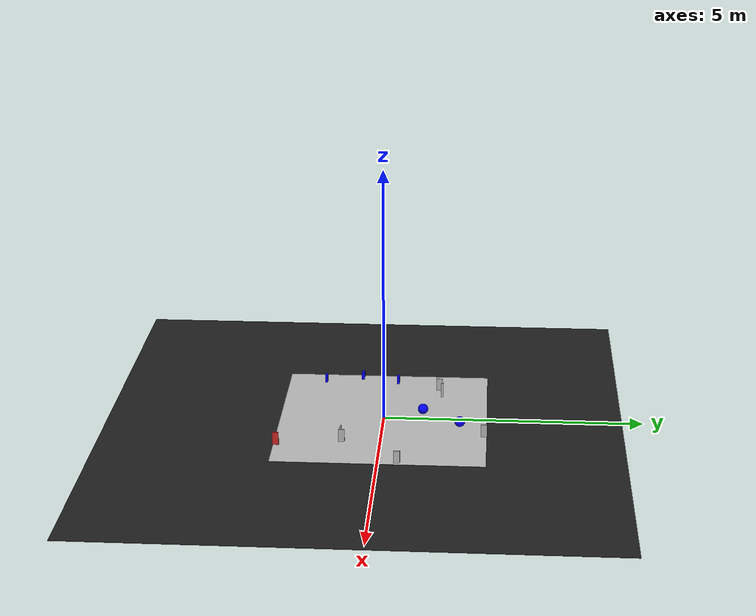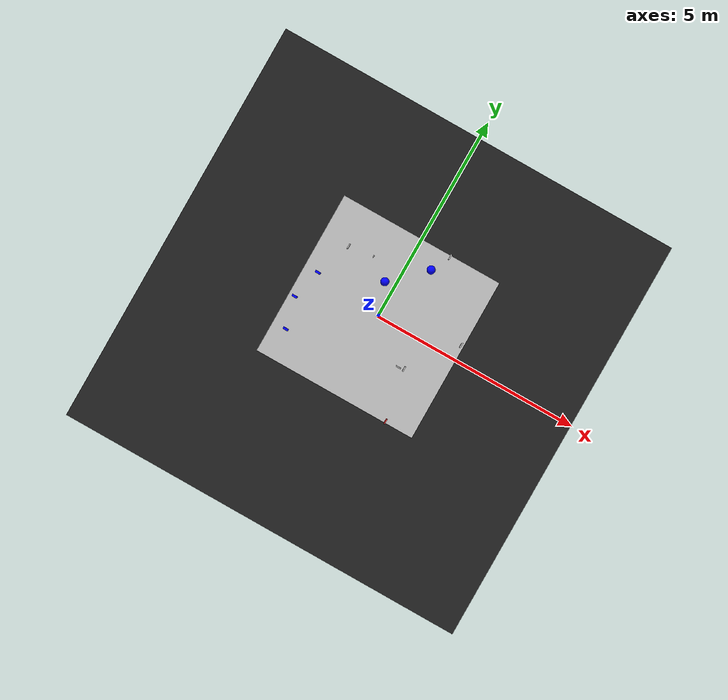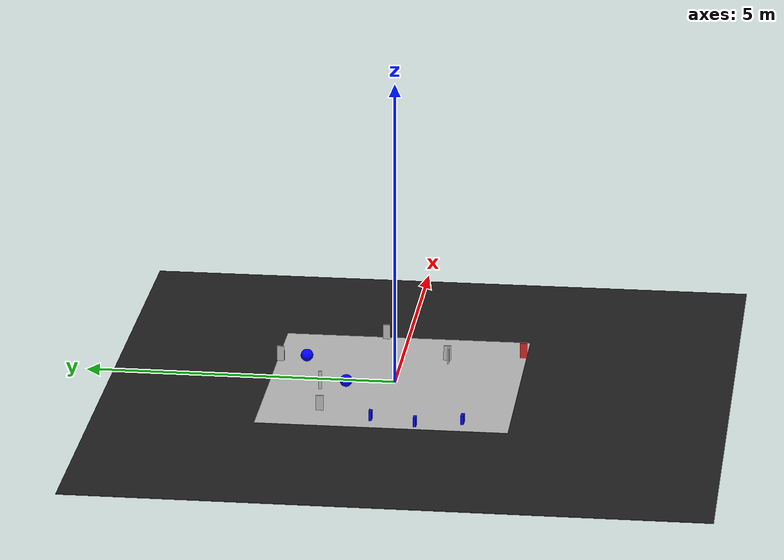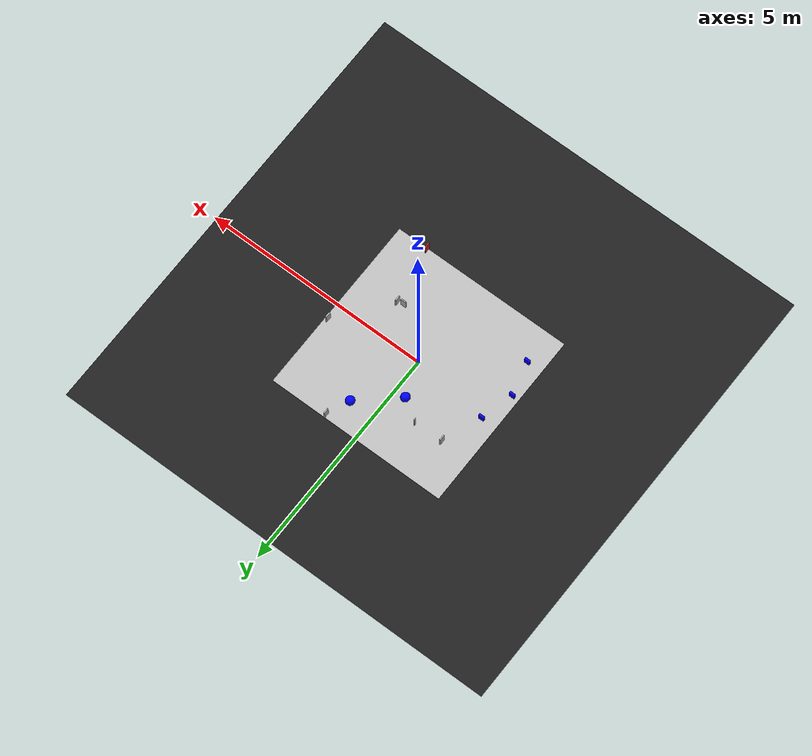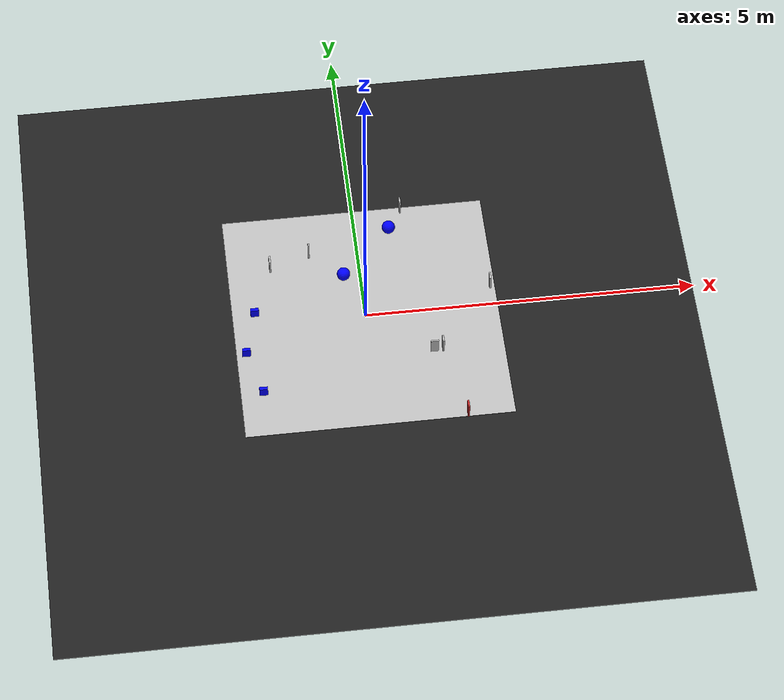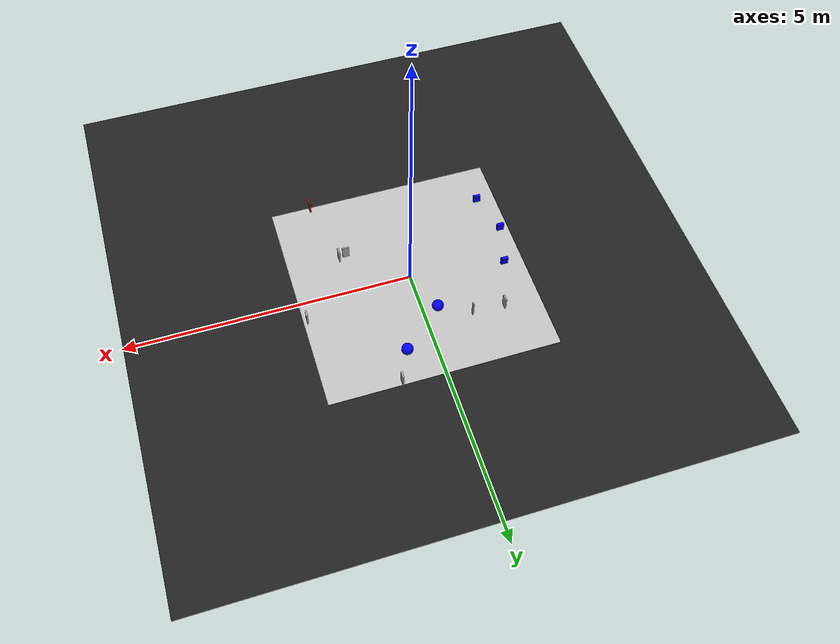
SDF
<sdf version="1.7">
 <world name="default">
  <scene>
   <ambient>0.8 0.8 0.8 1</ambient>
   <shadows>0</shadows>
   <grid>0</grid>
   <background>0.7 0.7 0.7 1</background>
  </scene>
  <model name="course">
   <static>1</static>
   <link name="course_link">
    <collision name="course_collision">
     <geometry><plane><normal>0 0 1</normal><size>4 4</size></plane></geometry>
     <surface><friction><ode><mu>100</mu><mu2>50</mu2></ode></friction></surface>
    </collision>
    <visual name="course_visual">
     <cast_shadows>0</cast_shadows>
     <geometry><plane><normal>0 0 1</normal><size>4 4</size></plane></geometry>
     <material>
      <script>
       <uri>model://turtlebot3_autorace_2020/course/materials/scripts</uri>
       <uri>model://turtlebot3_autorace_2020/course/materials/textures</uri>
       <name>course</name>
      </script>
     </material>
    </visual>
   </link>
   <pose>0 0 0 0 0 -3.14</pose>
  </model>
  <model name="traffic_bar">
   <static>0</static>
   <link name="traffic_bar">
    <collision name="collision"><geometry><box><size>0.3 0.02 0.05</size></box></geometry></collision>
    <visual name="visual">
     <geometry><box><size>0.3 0.02 0.05</size></box></geometry>
     <material>
      <script>
       <uri>model://turtlebot3_autorace_2020/traffic_bar/materials/scripts</uri>
       <uri>model://turtlebot3_autorace_2020/traffic_bar/materials/textures</uri>
       <name>traffic_bar</name>
      </script>
     </material>
    </visual>
    <inertial>
     <inertia><ixx>1</ixx><ixy>0</ixy><ixz>0</ixz><iyy>1</iyy><iyz>0</iyz><izz>1</izz></inertia>
     <mass>1</mass>
    </inertial>
   </link>
   <plugin name="traffic_bar_plugin" filename="libtraffic_bar_plugin.so"/>
   <pose>-0.75 1.11 0.275 0 -1.57 -1.57</pose>
  </model>
  <model name="traffic_light">
   <link name="traffic_light">
    <collision name="collision"><geometry><box><size>0.12 0.025 0.25</size></box></geometry></collision>
    <visual name="visual">
     <geometry><box><size>0.12 0.025 0.25</size></box></geometry>
     <material>
      <script>
       <uri>model://turtlebot3_autorace_2020/traffic_light/materials/scripts</uri>
       <uri>model://turtlebot3_autorace_2020/traffic_light/materials/textures</uri>
       <name>traffic_light_red</name>
      </script>
     </material>
    </visual>
   </link>
   <plugin name="traffic_light_plugin" filename="libtraffic_light_plugin.so"/>
   <static>1</static>
   <pose>1.3 -1.95 0.13 0 0 -1.57</pose>
  </model>
  <model name="traffic_parking">
   <static>1</static>
   <link name="box">
    <collision name="collision"><geometry><box><size>0.12 0.025 0.25</size></box></geometry></collision>
    <visual name="visual">
     <geometry><box><size>0.12 0.025 0.25</size></box></geometry>
     <material>
      <script>
       <uri>model://turtlebot3_autorace_2020/traffic_parking/materials/scripts</uri>
       <uri>model://turtlebot3_autorace_2020/traffic_parking/materials/textures</uri>
       <name>traffic_parking</name>
      </script>
     </material>
    </visual>
   </link>
   <pose>0.74 1.95 0.13 0 0 -1.57</pose>
  </model>
  <model name="traffic_stop">
   <static>1</static>
   <link name="box">
    <collision name="collision"><geometry><box><size>0.12 0.025 0.25</size></box></geometry></collision>
    <visual name="visual">
     <geometry><box><size>0.12 0.025 0.25</size></box></geometry>
     <material>
      <script>
       <uri>model://turtlebot3_autorace_2020/traffic_stop/materials/scripts</uri>
       <uri>model://turtlebot3_autorace_2020/traffic_stop/materials/textures</uri>
       <name>traffic_stop</name>
      </script>
     </material>
    </visual>
   </link>
   <pose>-1.35 1.04 0.125 0 0 -1.57</pose>
  </model>
  <model name="traffic_noentry">
   <static>1</static>
   <link name="box">
    <collision name="collision"><geometry><box><size>0.12 0.025 0.25</size></box></geometry></collision>
    <visual name="visual">
     <geometry><box><size>0.12 0.025 0.25</size></box></geometry>
     <material>
      <script>
       <uri>model://turtlebot3_autorace_2020/traffic_noentry/materials/scripts</uri>
       <uri>model://turtlebot3_autorace_2020/traffic_noentry/materials/textures</uri>
       <name>traffic_noentry</name>
      </script>
     </material>
    </visual>
   </link>
   <pose>0.95 -0.758 0.125 0 -0 0</pose>
  </model>
  <model name="traffic_right">
   <static>1</static>
   <link name="box">
    <collision name="collision"><geometry><box><size>0.12 0.025 0.25</size></box></geometry></collision>
    <visual name="visual">
     <geometry><box><size>0.12 0.025 0.25</size></box></geometry>
     <material>
      <script>
       <uri>model://turtlebot3_autorace_2020/traffic_right/materials/scripts</uri>
       <uri>model://turtlebot3_autorace_2020/traffic_right/materials/textures</uri>
       <name>traffic_right</name>
      </script>
     </material>
    </visual>
   </link>
   <pose>1.08 -0.728 0.125 0 0 -1.57</pose>
  </model>
  <light name="sun" type="directional">
   <pose>0 0 10 0 -0 0</pose>
   <diffuse>0.8 0.8 0.8 1</diffuse>
   <specular>0.1 0.1 0.1 1</specular>
   <attenuation>
    <range>1000</range>
    <constant>0.9</constant>
    <linear>0.01</linear>
    <quadratic>0.001</quadratic>
   </attenuation>
   <direction>-0.5 0.5 -1</direction>
   <spot><inner_angle>0</inner_angle><outer_angle>0</outer_angle><falloff>0</falloff></spot>
  </light>
  <model name="ground2">
   <pose>-0.012503 -0.386554 -0.1 0 -0 0</pose>
   <static>1</static>
   <link name="ground">
    <collision name="ground_coll"><geometry><box><size>8 8 0.01</size></box></geometry></collision>
    <visual name="ground_vis">
     <geometry><box><size>10 10 0.01</size></box></geometry>
     <material>
      <script><uri>file://media/materials/scripts/gazebo.material</uri><name>Gazebo/FlatBlack</name></script>
     </material>
    </visual>
   </link>
  </model>
  <gravity>0 0 -9.8</gravity>
  <magnetic_field>6e-06 2.3e-05 -4.2e-05</magnetic_field>
  <atmosphere type="adiabatic"/>
  <physics name="default_physics" default="0" type="ode">
   <max_step_size>0.001</max_step_size>
   <real_time_factor>1</real_time_factor>
   <real_time_update_rate>1000</real_time_update_rate>
  </physics>
  <spherical_coordinates>
   <surface_model>EARTH_WGS84</surface_model>
   <latitude_deg>0</latitude_deg>
   <longitude_deg>0</longitude_deg>
   <elevation>0</elevation>
   <heading_deg>0</heading_deg>
  </spherical_coordinates>
  <light name="user_point_light_1" type="point">
   <pose>-1.64815 0.604519 1 0 -0 0</pose>
   <diffuse>0.5 0.5 0.5 1</diffuse>
   <specular>0.1 0.1 0.1 1</specular>
   <attenuation>
    <range>20</range>
    <constant>0.5</constant>
    <linear>0.01</linear>
    <quadratic>0.001</quadratic>
   </attenuation>
   <cast_shadows>0</cast_shadows>
   <direction>0 0 -1</direction>
   <spot><inner_angle>0</inner_angle><outer_angle>0</outer_angle><falloff>0</falloff></spot>
  </light>
  <light name="user_point_light_2" type="point">
   <pose>1.63854 1.69565 1 0 -0 0</pose>
   <diffuse>0.5 0.5 0.5 1</diffuse>
   <specular>0.1 0.1 0.1 1</specular>
   <attenuation>
    <range>20</range>
    <constant>0.5</constant>
    <linear>0.01</linear>
    <quadratic>0.001</quadratic>
   </attenuation>
   <cast_shadows>0</cast_shadows>
   <direction>0 0 -1</direction>
   <spot><inner_angle>0</inner_angle><outer_angle>0</outer_angle><falloff>0</falloff></spot>
  </light>
  <light name="user_point_light_3" type="point">
   <pose>0.42 -3.31 1 0 -0 0</pose>
   <diffuse>0.5 0.5 0.5 1</diffuse>
   <specular>0.1 0.1 0.1 1</specular>
   <attenuation>
    <range>20</range>
    <constant>0.5</constant>
    <linear>0.01</linear>
    <quadratic>0.001</quadratic>
   </attenuation>
   <cast_shadows>0</cast_shadows>
   <direction>0 0 -1</direction>
   <spot><inner_angle>0</inner_angle><outer_angle>0</outer_angle><falloff>0</falloff></spot>
  </light>
  <model name="barrier_1">
   <link name="link">
    <inertial>
     <mass>1</mass>
     <inertia>
      <ixx>0.166667</ixx>
      <ixy>0</ixy>
      <ixz>0</ixz>
      <iyy>0.166667</iyy>
      <iyz>0</iyz>
      <izz>0.166667</izz>
     </inertia>
    </inertial>
    <gravity>0</gravity>
    <visual name="visual">
     <geometry><sphere><radius>0.1</radius></sphere></geometry>
     <material>
      <ambient>0 0 0.3 1</ambient>
      <diffuse>0 0 1 1</diffuse>
      <specular>0.1 0.1 0.1 1</specular>
      <emissive>0 0 0 1</emissive>
      <ambient>0.3 0.3 0.3 1</ambient>
      <diffuse>0.7 0.7 0.7 1</diffuse>
      <specular>0.01 0.01 0.01 1</specular>
      <emissive>0 0 0 1</emissive>
     </material>
    </visual>
    <collision name="collision">
     <geometry><box><size>0.25 0.1 0.3</size></box></geometry>
     <surface>
      <friction>
       <ode><mu>1</mu><mu2>1</mu2><fdir1>0 0 0</fdir1><slip1>0</slip1><slip2>0</slip2></ode>
       <torsional>
        <coefficient>1</coefficient>
        <patch_radius>0</patch_radius>
        <surface_radius>0</surface_radius>
        <use_patch_radius>1</use_patch_radius>
        <ode><slip>0</slip></ode>
       </torsional>
      </friction>
      <bounce><restitution_coefficient>0</restitution_coefficient><threshold>1e+06</threshold></bounce>
      <contact>
       <collide_without_contact>0</collide_without_contact>
       <collide_without_contact_bitmask>1</collide_without_contact_bitmask>
       <collide_bitmask>1</collide_bitmask>
       <ode>
        <soft_cfm>0</soft_cfm>
        <soft_erp>0.2</soft_erp>
        <kp>1e+13</kp>
        <kd>1</kd>
        <max_vel>0.01</max_vel>
        <min_depth>0</min_depth>
       </ode>
       <bullet>
        <split_impulse>1</split_impulse>
        <split_impulse_penetration_threshold>-0.01</split_impulse_penetration_threshold>
        <soft_cfm>0</soft_cfm>
        <soft_erp>0.2</soft_erp>
        <kp>1e+13</kp>
        <kd>1</kd>
       </bullet>
      </contact>
     </surface>
    </collision>
   </link>
   <static>0</static>
   <plugin name="barrier1_plugin" filename="libbarrier1_plugin.so"/>
   <pose>-0.254663 0.756448 0.090515 -1.56045 0.247724 0.005615</pose>
  </model>
  <model name="barrier_2">
   <link name="link">
    <inertial>
     <mass>1</mass>
     <inertia>
      <ixx>0.166667</ixx>
      <ixy>0</ixy>
      <ixz>0</ixz>
      <iyy>0.166667</iyy>
      <iyz>0</iyz>
      <izz>0.166667</izz>
     </inertia>
    </inertial>
    <visual name="visual">
     <geometry><box><size>0.125 0.05 0.15</size></box></geometry>
     <material>
      <ambient>0 0 0.3 1</ambient>
      <diffuse>0 0 1 1</diffuse>
      <specular>0.1 0.1 0.1 1</specular>
      <emissive>0 0 0 1</emissive>
      <ambient>0.3 0.3 0.3 1</ambient>
      <diffuse>0.7 0.7 0.7 1</diffuse>
      <specular>0.01 0.01 0.01 1</specular>
      <emissive>0 0 0 1</emissive>
     </material>
    </visual>
    <collision name="collision">
     <geometry><box><size>0.125 0.05 0.15</size></box></geometry>
     <surface>
      <friction>
       <ode><mu>1</mu><mu2>1</mu2><fdir1>0 0 0</fdir1><slip1>0</slip1><slip2>0</slip2></ode>
       <torsional>
        <coefficient>1</coefficient>
        <patch_radius>0</patch_radius>
        <surface_radius>0</surface_radius>
        <use_patch_radius>1</use_patch_radius>
        <ode><slip>0</slip></ode>
       </torsional>
      </friction>
      <bounce><restitution_coefficient>0</restitution_coefficient><threshold>1e+06</threshold></bounce>
      <contact>
       <collide_without_contact>0</collide_without_contact>
       <collide_without_contact_bitmask>1</collide_without_contact_bitmask>
       <collide_bitmask>1</collide_bitmask>
       <ode>
        <soft_cfm>0</soft_cfm>
        <soft_erp>0.2</soft_erp>
        <kp>1e+13</kp>
        <kd>1</kd>
        <max_vel>0.01</max_vel>
        <min_depth>0</min_depth>
       </ode>
       <bullet>
        <split_impulse>1</split_impulse>
        <split_impulse_penetration_threshold>-0.01</split_impulse_penetration_threshold>
        <soft_cfm>0</soft_cfm>
        <soft_erp>0.2</soft_erp>
        <kp>1e+13</kp>
        <kd>1</kd>
       </bullet>
      </contact>
     </surface>
    </collision>
   </link>
   <static>0</static>
   <pose>-1.84814 -0.525911 0.075 -2e-06 6e-06 3.13639</pose>
  </model>
  <model name="barrier_3">
   <link name="link">
    <inertial>
     <mass>1</mass>
     <inertia>
      <ixx>0.166667</ixx>
      <ixy>0</ixy>
      <ixz>0</ixz>
      <iyy>0.166667</iyy>
      <iyz>0</iyz>
      <izz>0.166667</izz>
     </inertia>
    </inertial>
    <visual name="visual">
     <geometry><box><size>0.125 0.05 0.15</size></box></geometry>
     <material>
      <ambient>0 0 0.3 1</ambient>
      <diffuse>0 0 1 1</diffuse>
      <specular>0.1 0.1 0.1 1</specular>
      <emissive>0 0 0 1</emissive>
      <ambient>0.3 0.3 0.3 1</ambient>
      <diffuse>0.7 0.7 0.7 1</diffuse>
      <specular>0.01 0.01 0.01 1</specular>
      <emissive>0 0 0 1</emissive>
     </material>
    </visual>
    <collision name="collision">
     <geometry><box><size>0.125 0.05 0.15</size></box></geometry>
     <surface>
      <friction>
       <ode><mu>1</mu><mu2>1</mu2><fdir1>0 0 0</fdir1><slip1>0</slip1><slip2>0</slip2></ode>
       <torsional>
        <coefficient>1</coefficient>
        <patch_radius>0</patch_radius>
        <surface_radius>0</surface_radius>
        <use_patch_radius>1</use_patch_radius>
        <ode><slip>0</slip></ode>
       </torsional>
      </friction>
      <bounce><restitution_coefficient>0</restitution_coefficient><threshold>1e+06</threshold></bounce>
      <contact>
       <collide_without_contact>0</collide_without_contact>
       <collide_without_contact_bitmask>1</collide_without_contact_bitmask>
       <collide_bitmask>1</collide_bitmask>
       <ode>
        <soft_cfm>0</soft_cfm>
        <soft_erp>0.2</soft_erp>
        <kp>1e+13</kp>
        <kd>1</kd>
        <max_vel>0.01</max_vel>
        <min_depth>0</min_depth>
       </ode>
       <bullet>
        <split_impulse>1</split_impulse>
        <split_impulse_penetration_threshold>-0.01</split_impulse_penetration_threshold>
        <soft_cfm>0</soft_cfm>
        <soft_erp>0.2</soft_erp>
        <kp>1e+13</kp>
        <kd>1</kd>
       </bullet>
      </contact>
     </surface>
    </collision>
   </link>
   <static>0</static>
   <pose>-1.66013 -1.26015 0.075 2e-06 -0 -0.014152</pose>
  </model>
  <audio><device>default</device></audio>
  <model name="barrier_1_clone">
   <link name="link">
    <inertial>
     <mass>1</mass>
     <inertia>
      <ixx>0.166667</ixx>
      <ixy>0</ixy>
      <ixz>0</ixz>
      <iyy>0.166667</iyy>
      <iyz>0</iyz>
      <izz>0.166667</izz>
     </inertia>
    </inertial>
    <gravity>0</gravity>
    <visual name="visual">
     <geometry><sphere><radius>0.1</radius></sphere></geometry>
     <material>
      <ambient>0 0 0.3 1</ambient>
      <diffuse>0 0 1 1</diffuse>
      <specular>0.1 0.1 0.1 1</specular>
      <emissive>0 0 0 1</emissive>
      <ambient>0.3 0.3 0.3 1</ambient>
      <diffuse>0.7 0.7 0.7 1</diffuse>
      <specular>0.01 0.01 0.01 1</specular>
      <emissive>0 0 0 1</emissive>
     </material>
    </visual>
    <collision name="collision">
     <geometry><box><size>0.25 0.1 0.3</size></box></geometry>
     <surface>
      <friction>
       <ode><mu>1</mu><mu2>1</mu2><fdir1>0 0 0</fdir1><slip1>0</slip1><slip2>0</slip2></ode>
       <torsional>
        <coefficient>1</coefficient>
        <patch_radius>0</patch_radius>
        <surface_radius>0</surface_radius>
        <use_patch_radius>1</use_patch_radius>
        <ode><slip>0</slip></ode>
       </torsional>
      </friction>
      <bounce><restitution_coefficient>0</restitution_coefficient><threshold>1e+06</threshold></bounce>
      <contact>
       <collide_without_contact>0</collide_without_contact>
       <collide_without_contact_bitmask>1</collide_without_contact_bitmask>
       <collide_bitmask>1</collide_bitmask>
       <ode>
        <soft_cfm>0</soft_cfm>
        <soft_erp>0.2</soft_erp>
        <kp>1e+13</kp>
        <kd>1</kd>
        <max_vel>0.01</max_vel>
        <min_depth>0</min_depth>
       </ode>
       <bullet>
        <split_impulse>1</split_impulse>
        <split_impulse_penetration_threshold>-0.01</split_impulse_penetration_threshold>
        <soft_cfm>0</soft_cfm>
        <soft_erp>0.2</soft_erp>
        <kp>1e+13</kp>
        <kd>1</kd>
       </bullet>
      </contact>
     </surface>
    </collision>
   </link>
   <static>0</static>
   <plugin name="barrier1_clone_plugin" filename="libbarrier1_clone_plugin.so"/>
   <pose>0.513196 1.48808 0.201292 0.366861 1.41075 2.10976</pose>
  </model>
  <model name="barrier_3_clone">
   <link name="link">
    <inertial>
     <mass>1</mass>
     <inertia>
      <ixx>0.166667</ixx>
      <ixy>0</ixy>
      <ixz>0</ixz>
      <iyy>0.166667</iyy>
      <iyz>0</iyz>
      <izz>0.166667</izz>
     </inertia>
    </inertial>
    <visual name="visual">
     <geometry><box><size>0.125 0.05 0.15</size></box></geometry>
     <material>
      <ambient>0 0 0.3 1</ambient>
      <diffuse>0 0 1 1</diffuse>
      <specular>0.1 0.1 0.1 1</specular>
      <emissive>0 0 0 1</emissive>
      <ambient>0.3 0.3 0.3 1</ambient>
      <diffuse>0.7 0.7 0.7 1</diffuse>
      <specular>0.01 0.01 0.01 1</specular>
      <emissive>0 0 0 1</emissive>
     </material>
    </visual>
    <collision name="collision">
     <geometry><box><size>0.125 0.05 0.15</size></box></geometry>
     <surface>
      <friction>
       <ode><mu>1</mu><mu2>1</mu2><fdir1>0 0 0</fdir1><slip1>0</slip1><slip2>0</slip2></ode>
       <torsional>
        <coefficient>1</coefficient>
        <patch_radius>0</patch_radius>
        <surface_radius>0</surface_radius>
        <use_patch_radius>1</use_patch_radius>
        <ode><slip>0</slip></ode>
       </torsional>
      </friction>
      <bounce><restitution_coefficient>0</restitution_coefficient><threshold>1e+06</threshold></bounce>
      <contact>
       <collide_without_contact>0</collide_without_contact>
       <collide_without_contact_bitmask>1</collide_without_contact_bitmask>
       <collide_bitmask>1</collide_bitmask>
       <ode>
        <soft_cfm>0</soft_cfm>
        <soft_erp>0.2</soft_erp>
        <kp>1e+13</kp>
        <kd>1</kd>
        <max_vel>0.01</max_vel>
        <min_depth>0</min_depth>
       </ode>
       <bullet>
        <split_impulse>1</split_impulse>
        <split_impulse_penetration_threshold>-0.01</split_impulse_penetration_threshold>
        <soft_cfm>0</soft_cfm>
        <soft_erp>0.2</soft_erp>
        <kp>1e+13</kp>
        <kd>1</kd>
       </bullet>
      </contact>
     </surface>
    </collision>
   </link>
   <static>0</static>
   <pose>-1.6599 0.196332 0.075 0 3e-06 -3.13106</pose>
  </model>
  <model name="traffic_intersection_clone">
   <static>1</static>
   <link name="box">
    <collision name="collision"><geometry><box><size>0.12 0.025 0.25</size></box></geometry></collision>
    <visual name="visual">
     <geometry><box><size>0.12 0.025 0.25</size></box></geometry>
     <material>
      <script>
       <uri>model://turtlebot3_autorace_2020/traffic_intersection_clone/materials/scripts</uri>
       <uri>model://turtlebot3_autorace_2020/traffic_intersection_clone/materials/textures</uri>
       <name>traffic_intersection_clone</name>
      </script>
     </material>
    </visual>
   </link>
   <pose>1.92909 0.360546 0.125 0 0 -1.59931</pose>
  </model>
 </world>
</sdf>
